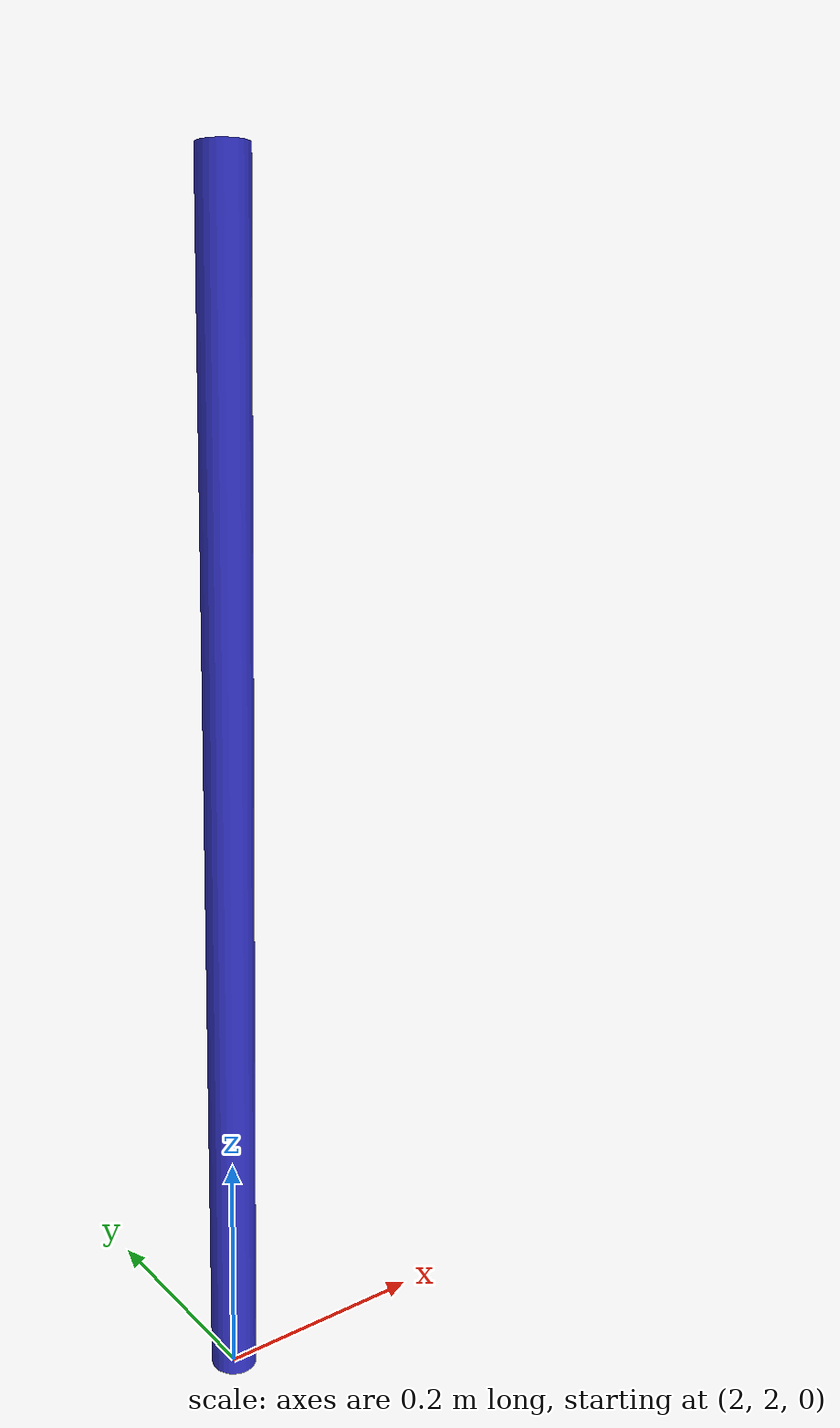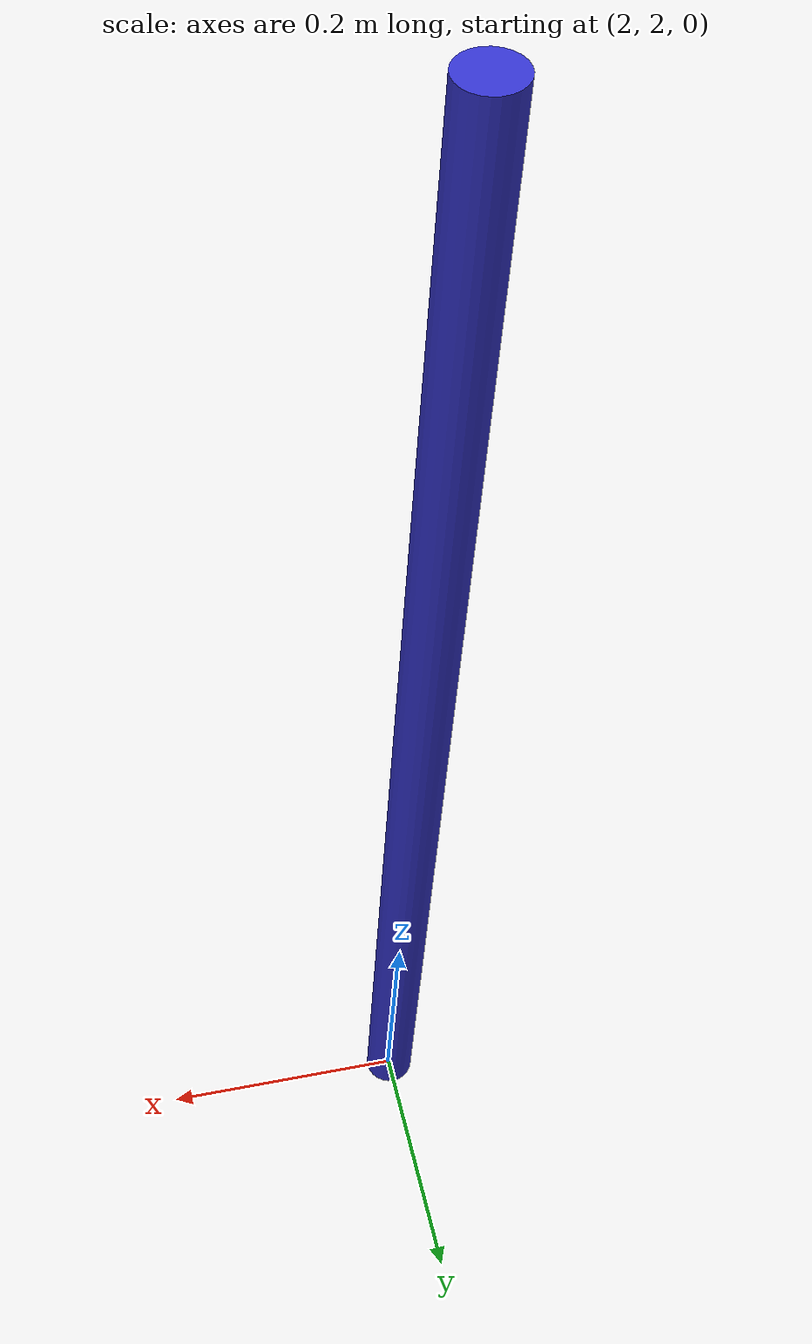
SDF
<?xml version="1.0" ?>
<sdf version="1.7">
  <model name="peg">
    <static>false</static>
    <link name="peg_link">
      <gravity>false</gravity>
      <inertial>
        <mass>0.1</mass> <inertia>
          <ixx>0.001</ixx><ixy>0</ixy><ixz>0</ixz>
          <iyy>0.001</iyy><iyz>0</iyz>
          <izz>0.0001</izz>
        </inertia>
      </inertial>

      <collision name="peg_collision">
        <geometry>
          <cylinder>
            <radius>0.02</radius> <length>1.0</length> </cylinder>
        </geometry>
      </collision>

      <visual name="peg_visual">
        <geometry>
          <cylinder>
            <radius>0.02</radius>
            <length>1.0</length>
          </cylinder>
        </geometry>
        <material>
          <ambient>0.2 0.8 0.2 1</ambient> <diffuse>0.2 0.2 0.8 1</diffuse>
          <specular>0.1 0.1 0.1 1</specular>
          <emissive>0 0 0 0</emissive>
        </material>
      </visual>

      <pose>2 2 0.5 0 0 0</pose>
    </link>

    <plugin
      filename="libpeg_pose_gz_plugin.so"
      name="gz_env_pkg::SetPegPosePlugin">
    </plugin>

  </model>
</sdf>
